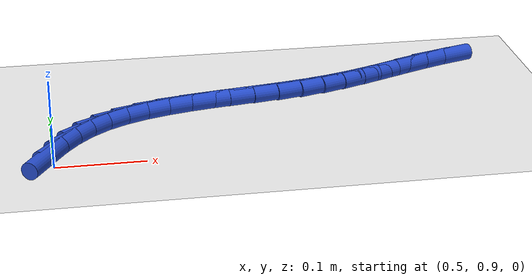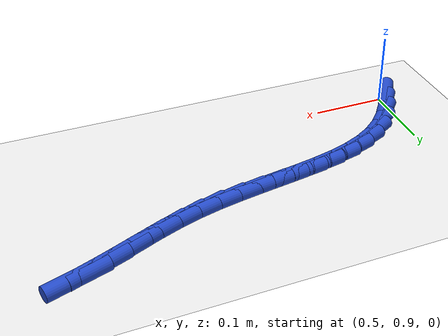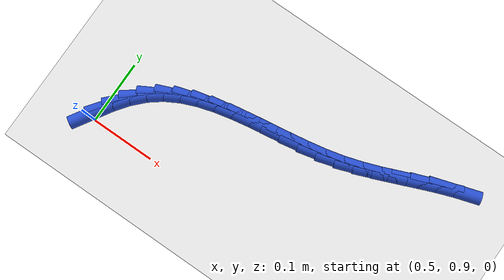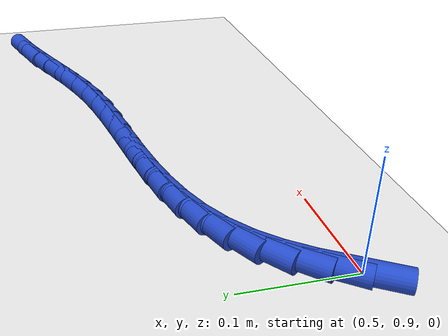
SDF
<sdf version="1.6">
 <world name="default">
  <model name="ground_plane">
   <static>1</static>
   <link name="link">
    <collision name="collision">
     <geometry><plane><normal>0 0 1</normal><size>100 100</size></plane></geometry>
     <surface><friction><ode><mu>100</mu><mu2>50</mu2></ode></friction></surface>
    </collision>
    <visual name="visual">
     <cast_shadows>0</cast_shadows>
     <geometry><plane><normal>0 0 1</normal><size>100 100</size></plane></geometry>
     <material>
      <script><uri>file://media/materials/scripts/gazebo.material</uri><name>Gazebo/WhiteGlow</name></script>
     </material>
    </visual>
   </link>
  </model>
  <model name="line">
   <link name="link_38">
    <pose>0.49489216538313535 0.9092791329456409 0.01 0 1.57 1.0167593533997539</pose>
    <collision name="collision">
     <geometry><cylinder><radius>0.01</radius><length>0.08</length></cylinder></geometry>
    </collision>
    <visual name="visual">
     <material>
      <script><name>Gazebo/Blue</name><uri>file://media/materials/scripts/gazebo.material</uri></script>
     </material>
     <geometry><cylinder><radius>0.01</radius><length>0.08</length></cylinder></geometry>
    </visual>
   </link>
   <link name="link_39">
    <pose>0.5092367043851812 0.9324650933167309 0.01 0 1.57 0.9246765320449766</pose>
    <collision name="collision">
     <geometry><cylinder><radius>0.01</radius><length>0.08</length></cylinder></geometry>
    </collision>
    <visual name="visual">
     <material>
      <script><name>Gazebo/Blue</name><uri>file://media/materials/scripts/gazebo.material</uri></script>
     </material>
     <geometry><cylinder><radius>0.01</radius><length>0.08</length></cylinder></geometry>
    </visual>
   </link>
   <link name="link_40">
    <pose>0.5251228798250435 0.9535315043159357 0.01 0 1.57 0.8057731100477616</pose>
    <collision name="collision">
     <geometry><cylinder><radius>0.01</radius><length>0.08</length></cylinder></geometry>
    </collision>
    <visual name="visual">
     <material>
      <script><name>Gazebo/Blue</name><uri>file://media/materials/scripts/gazebo.material</uri></script>
     </material>
     <geometry><cylinder><radius>0.01</radius><length>0.08</length></cylinder></geometry>
    </visual>
   </link>
   <link name="link_41">
    <pose>0.5428854979222884 0.9720331062241352 0.01 0 1.57 0.6602333291594917</pose>
    <collision name="collision">
     <geometry><cylinder><radius>0.01</radius><length>0.08</length></cylinder></geometry>
    </collision>
    <visual name="visual">
     <material>
      <script><name>Gazebo/Blue</name><uri>file://media/materials/scripts/gazebo.material</uri></script>
     </material>
     <geometry><cylinder><radius>0.01</radius><length>0.08</length></cylinder></geometry>
    </visual>
   </link>
   <link name="link_42">
    <pose>0.5628512656900937 0.987536102678552 0.01 0 1.57 0.5114736847651868</pose>
    <collision name="collision">
     <geometry><cylinder><radius>0.01</radius><length>0.08</length></cylinder></geometry>
    </collision>
    <visual name="visual">
     <material>
      <script><name>Gazebo/Blue</name><uri>file://media/materials/scripts/gazebo.material</uri></script>
     </material>
     <geometry><cylinder><radius>0.01</radius><length>0.08</length></cylinder></geometry>
    </visual>
   </link>
   <link name="link_43">
    <pose>0.5850655630370231 1.0000048786558762 0.01 0 1.57 0.3885397376110385</pose>
    <collision name="collision">
     <geometry><cylinder><radius>0.01</radius><length>0.08</length></cylinder></geometry>
    </collision>
    <visual name="visual">
     <material>
      <script><name>Gazebo/Blue</name><uri>file://media/materials/scripts/gazebo.material</uri></script>
     </material>
     <geometry><cylinder><radius>0.01</radius><length>0.08</length></cylinder></geometry>
    </visual>
   </link>
   <link name="link_44">
    <pose>0.6092266102296122 1.0098951777292653 0.01 0 1.57 0.2936809650711544</pose>
    <collision name="collision">
     <geometry><cylinder><radius>0.01</radius><length>0.08</length></cylinder></geometry>
    </collision>
    <visual name="visual">
     <material>
      <script><name>Gazebo/Blue</name><uri>file://media/materials/scripts/gazebo.material</uri></script>
     </material>
     <geometry><cylinder><radius>0.01</radius><length>0.08</length></cylinder></geometry>
    </visual>
   </link>
   <link name="link_45">
    <pose>0.6350111790706325 1.0176931009379429 0.01 0 1.57 0.2247400355590737</pose>
    <collision name="collision">
     <geometry><cylinder><radius>0.01</radius><length>0.08</length></cylinder></geometry>
    </collision>
    <visual name="visual">
     <material>
      <script><name>Gazebo/Blue</name><uri>file://media/materials/scripts/gazebo.material</uri></script>
     </material>
     <geometry><cylinder><radius>0.01</radius><length>0.08</length></cylinder></geometry>
    </visual>
   </link>
   <link name="link_46">
    <pose>0.6620960413628557 1.0238847493211305 0.01 0 1.57 0.17879450097534663</pose>
    <collision name="collision">
     <geometry><cylinder><radius>0.01</radius><length>0.08</length></cylinder></geometry>
    </collision>
    <visual name="visual">
     <material>
      <script><name>Gazebo/Blue</name><uri>file://media/materials/scripts/gazebo.material</uri></script>
     </material>
     <geometry><cylinder><radius>0.01</radius><length>0.08</length></cylinder></geometry>
    </visual>
   </link>
   <link name="link_47">
    <pose>0.6901579689090529 1.0289562239180507 0.01 0 1.57 0.15331575514629203</pose>
    <collision name="collision">
     <geometry><cylinder><radius>0.01</radius><length>0.08</length></cylinder></geometry>
    </collision>
    <visual name="visual">
     <material>
      <script><name>Gazebo/Blue</name><uri>file://media/materials/scripts/gazebo.material</uri></script>
     </material>
     <geometry><cylinder><radius>0.01</radius><length>0.08</length></cylinder></geometry>
    </visual>
   </link>
   <link name="link_48">
    <pose>0.718873733511996 1.0333936257679266 0.01 0 1.57 0.14661557094771469</pose>
    <collision name="collision">
     <geometry><cylinder><radius>0.01</radius><length>0.08</length></cylinder></geometry>
    </collision>
    <visual name="visual">
     <material>
      <script><name>Gazebo/Blue</name><uri>file://media/materials/scripts/gazebo.material</uri></script>
     </material>
     <geometry><cylinder><radius>0.01</radius><length>0.08</length></cylinder></geometry>
    </visual>
   </link>
   <link name="link_49">
    <pose>0.7479201069744563 1.0376830559099797 0.01 0 1.57 0.15794904390612338</pose>
    <collision name="collision">
     <geometry><cylinder><radius>0.01</radius><length>0.08</length></cylinder></geometry>
    </collision>
    <visual name="visual">
     <material>
      <script><name>Gazebo/Blue</name><uri>file://media/materials/scripts/gazebo.material</uri></script>
     </material>
     <geometry><cylinder><radius>0.01</radius><length>0.08</length></cylinder></geometry>
    </visual>
   </link>
   <link name="link_50">
    <pose>0.7769738610992054 1.042310615383433 0.01 0 1.57 0.18747940203370997</pose>
    <collision name="collision">
     <geometry><cylinder><radius>0.01</radius><length>0.08</length></cylinder></geometry>
    </collision>
    <visual name="visual">
     <material>
      <script><name>Gazebo/Blue</name><uri>file://media/materials/scripts/gazebo.material</uri></script>
     </material>
     <geometry><cylinder><radius>0.01</radius><length>0.08</length></cylinder></geometry>
    </visual>
   </link>
   <link name="link_51">
    <pose>0.8057117676890144 1.0477624052275085 0.01 0 1.57 0.23616333381526736</pose>
    <collision name="collision">
     <geometry><cylinder><radius>0.01</radius><length>0.08</length></cylinder></geometry>
    </collision>
    <visual name="visual">
     <material>
      <script><name>Gazebo/Blue</name><uri>file://media/materials/scripts/gazebo.material</uri></script>
     </material>
     <geometry><cylinder><radius>0.01</radius><length>0.08</length></cylinder></geometry>
    </visual>
   </link>
   <link name="link_52">
    <pose>0.8338106094629603 1.0545245057891517 0.01 0 1.57 0.29800604289535454</pose>
    <collision name="collision">
     <geometry><cylinder><radius>0.01</radius><length>0.08</length></cylinder></geometry>
    </collision>
    <visual name="visual">
     <material>
      <script><name>Gazebo/Blue</name><uri>file://media/materials/scripts/gazebo.material</uri></script>
     </material>
     <geometry><cylinder><radius>0.01</radius><length>0.08</length></cylinder></geometry>
    </visual>
   </link>
   <link name="link_53">
    <pose>0.8610485997523967 1.062890731774053 0.01 0 1.57 0.3475621143609681</pose>
    <collision name="collision">
     <geometry><cylinder><radius>0.01</radius><length>0.08</length></cylinder></geometry>
    </collision>
    <visual name="visual">
     <material>
      <script><name>Gazebo/Blue</name><uri>file://media/materials/scripts/gazebo.material</uri></script>
     </material>
     <geometry><cylinder><radius>0.01</radius><length>0.08</length></cylinder></geometry>
    </visual>
   </link>
   <link name="link_54">
    <pose>0.8875533676087901 1.072492566901402 0.01 0 1.57 0.37840269732567994</pose>
    <collision name="collision">
     <geometry><cylinder><radius>0.01</radius><length>0.08</length></cylinder></geometry>
    </collision>
    <visual name="visual">
     <material>
      <script><name>Gazebo/Blue</name><uri>file://media/materials/scripts/gazebo.material</uri></script>
     </material>
     <geometry><cylinder><radius>0.01</radius><length>0.08</length></cylinder></geometry>
    </visual>
   </link>
   <link name="link_55">
    <pose>0.9135277267973817 1.0828189793629523 0.01 0 1.57 0.38992426332164404</pose>
    <collision name="collision">
     <geometry><cylinder><radius>0.01</radius><length>0.08</length></cylinder></geometry>
    </collision>
    <visual name="visual">
     <material>
      <script><name>Gazebo/Blue</name><uri>file://media/materials/scripts/gazebo.material</uri></script>
     </material>
     <geometry><cylinder><radius>0.01</radius><length>0.08</length></cylinder></geometry>
    </visual>
   </link>
   <link name="link_56">
    <pose>0.9391744910834139 1.0933589373504589 0.01 0 1.57 0.3816434331658473</pose>
    <collision name="collision">
     <geometry><cylinder><radius>0.01</radius><length>0.08</length></cylinder></geometry>
    </collision>
    <visual name="visual">
     <material>
      <script><name>Gazebo/Blue</name><uri>file://media/materials/scripts/gazebo.material</uri></script>
     </material>
     <geometry><cylinder><radius>0.01</radius><length>0.08</length></cylinder></geometry>
    </visual>
   </link>
   <link name="link_57">
    <pose>0.9646964742321287 1.1036014090556772 0.01 0 1.57 0.35307185985536405</pose>
    <collision name="collision">
     <geometry><cylinder><radius>0.01</radius><length>0.08</length></cylinder></geometry>
    </collision>
    <visual name="visual">
     <material>
      <script><name>Gazebo/Blue</name><uri>file://media/materials/scripts/gazebo.material</uri></script>
     </material>
     <geometry><cylinder><radius>0.01</radius><length>0.08</length></cylinder></geometry>
    </visual>
   </link>
   <link name="link_58">
    <pose>0.9902964900087675 1.113035362670361 0.01 0 1.57 0.30382214685115905</pose>
    <collision name="collision">
     <geometry><cylinder><radius>0.01</radius><length>0.08</length></cylinder></geometry>
    </collision>
    <visual name="visual">
     <material>
      <script><name>Gazebo/Blue</name><uri>file://media/materials/scripts/gazebo.material</uri></script>
     </material>
     <geometry><cylinder><radius>0.01</radius><length>0.08</length></cylinder></geometry>
    </visual>
   </link>
  </model>
 </world>
</sdf>
